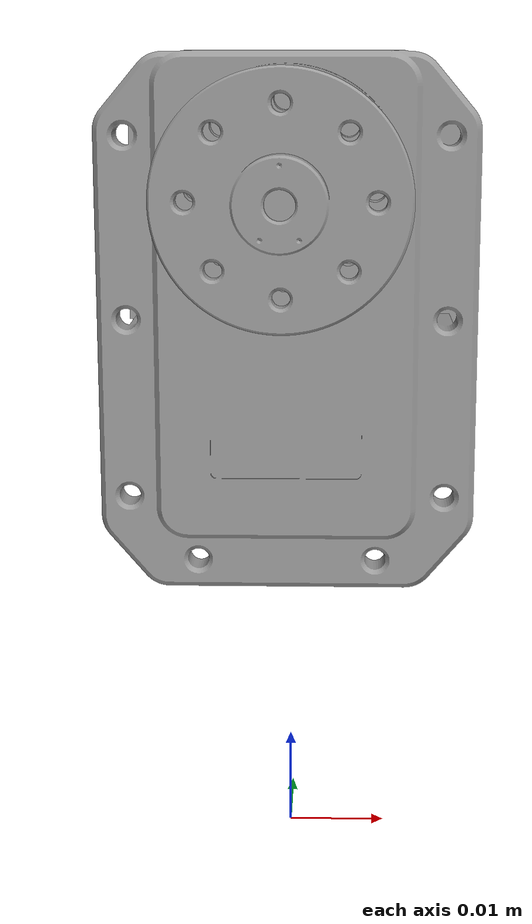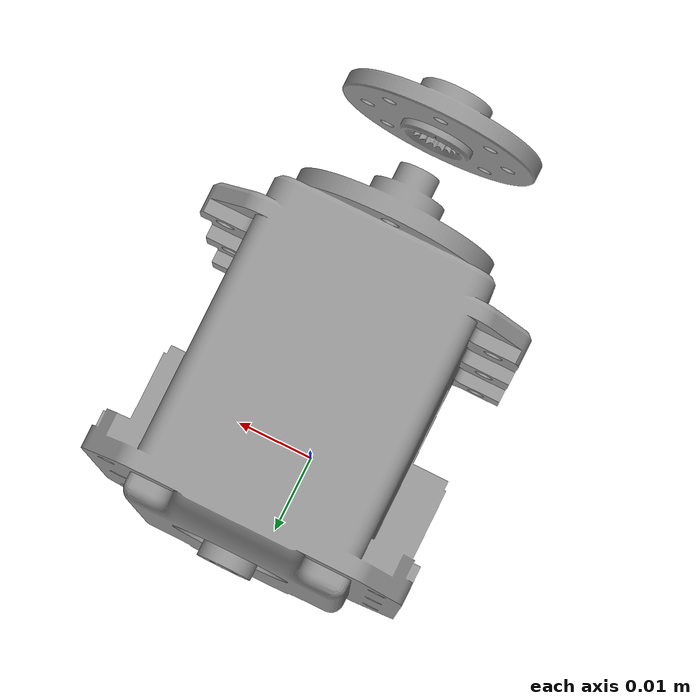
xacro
<?xml version="1.0"?>
<robot name="one_dynamixel_simulation" xmlns:xacro="http://ros.org/wiki/xacro">
  <xacro:include filename="$(find one_dynamixel_simulation)/urdf/MX28AR.xacro" />
  <xacro:include filename="$(find one_dynamixel_simulation)/urdf/MX28AR.ros2_control.xacro" />
  <link name="world"/>

  <xacro:one_dynamixel_simulation_ros2_control name="one_dynamixel_simulation_ros2_control" />
</robot>

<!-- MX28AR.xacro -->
<robot xmlns:ns0="http://ros.org/wiki/xacro">

<ns0:include filename="$(find one_dynamixel_simulation)/urdf/one_dynamixel_simulation.material.xacro" />

  <joint name="origin_to_link1" type="fixed">
    <parent link="world" />
    <child link="link1" />
    <axis xyz="0 0 1" />
    <origin xyz="0 0 0.07" rpy="0 0 0" />
  </joint>

  <link name="link1">
    <visual>
      <origin xyz="0 0 0" rpy="${pi/2} 0 0" />
      <geometry>
        <mesh filename="file://$(find one_dynamixel_simulation)/meshes/mx-28at_ar.stl" scale="0.001 0.001 0.001" />
      </geometry>
      <material name="grey" />
    </visual>

    <collision>
      <origin xyz="0 0 0" rpy="${pi/2} 0 0" />
      <geometry>
        <mesh filename="file://$(find one_dynamixel_simulation)/meshes/mx-28at_ar.stl" scale="0.001 0.001 0.001" />
      </geometry>
    </collision>

    <inertial>
      <origin xyz="0.2407e-03 -12.903e-03 0.5949e-03" />
      <mass value="0.075" />
      <inertia ixx="22649.62e-06" ixy="36.779e-06" ixz="-213.05e-06" iyy="12868.3e-06" iyz="-1145.65e-06" izz="17733.142e-06" />
    </inertial>
  </link>
  <gazebo reference="link1">
        <material>Gazebo/Grey</material>
  </gazebo>

  <joint name="joint1" type="revolute">
    <parent link="link1" />
    <child link="link2" />
    <origin xyz="0.0 -0.03 0.0" rpy="0 0 0" />
    <axis xyz="0 -1 0" />
    <limit velocity="5.76" effort="2.5" lower="-${pi}" upper="${pi}" />
    <dynamics damping="2.825" friction="2.788" />
  </joint>
  <gazebo reference="joint1">
      <implicitSpringDamper>true</implicitSpringDamper>
      <springStiffness>0.5</springStiffness>
      <springReference>0.061</springReference>
      <stopErp>0.7</stopErp>
      <stopCfm>0.45</stopCfm>
  </gazebo>

  <link name="link2">
    <visual>
      <origin xyz="0 0 0" rpy="${pi} 0 0" />
      <geometry>
        <mesh filename="file://$(find one_dynamixel_simulation)/meshes/hn07-n101.stl" scale="0.001 0.001 0.001" />
      </geometry>
      <material name="grey" />
    </visual>

    <collision>
      <origin xyz="0 0 0" rpy="${pi} 0 0" />
      <geometry>
        <mesh filename="file://$(find one_dynamixel_simulation)/meshes/hn07-n101.stl" scale="0.001 0.001 0.001" />
      </geometry>
    </collision>

     <inertial>
      <origin xyz="0 0 0" />
      <mass value="0.003" />
      <inertia ixx="0.0000003025" ixy="0.0" ixz="0.0" iyy="0.0000003025" iyz="0.0" izz="0.00000031" />
    </inertial>
  </link>
  <gazebo reference="link2">
        <material>Gazebo/Grey</material>
  </gazebo>

</robot>
